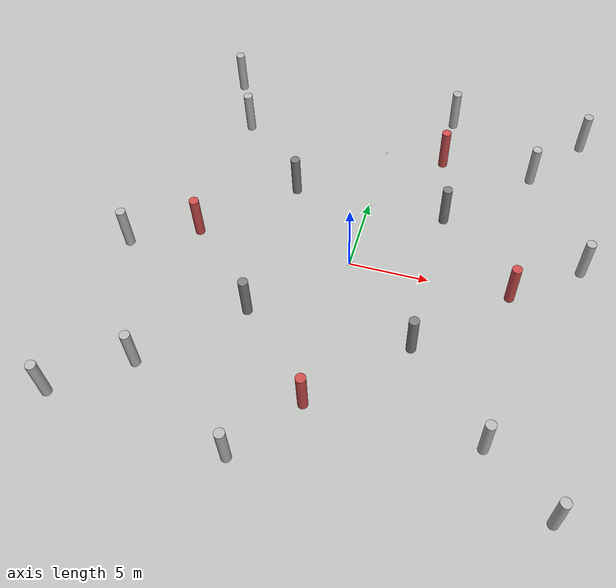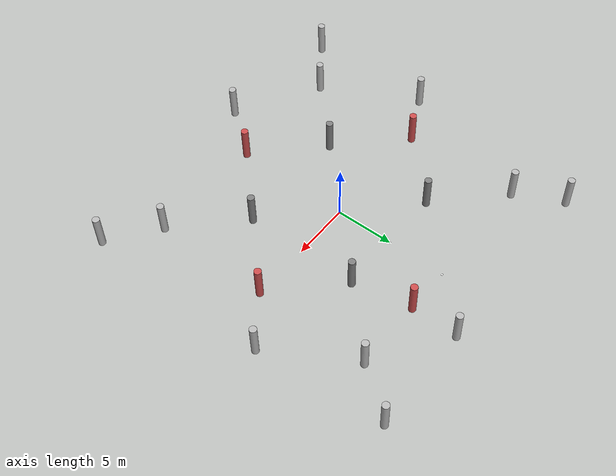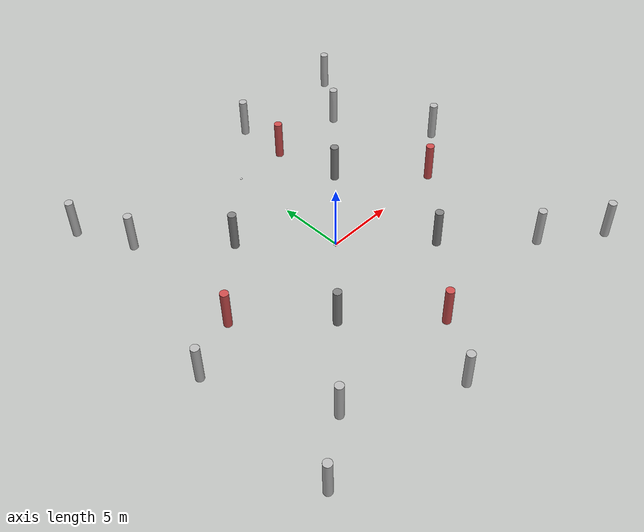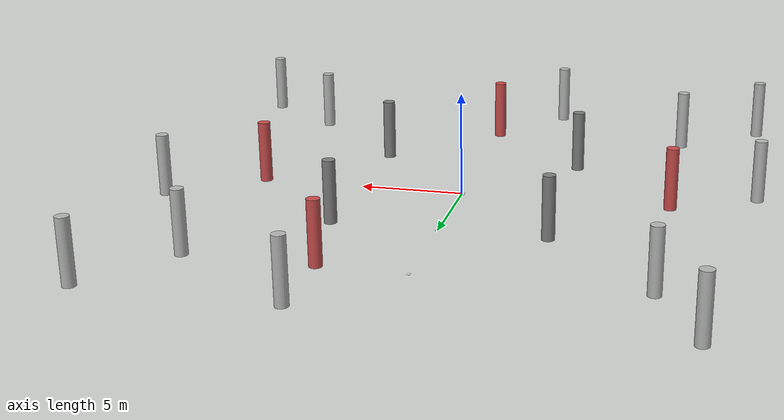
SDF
<sdf version="1.9">
 <world name="iris_runway">
  <physics name="1ms" type="ignore">
   <max_step_size>0.001</max_step_size>
   <real_time_factor>1.0</real_time_factor>
  </physics>
  <plugin filename="gz-sim-physics-system" name="gz::sim::systems::Physics"/>
  <plugin filename="gz-sim-sensors-system" name="gz::sim::systems::Sensors">
   <render_engine>ogre2</render_engine>
  </plugin>
  <plugin filename="gz-sim-user-commands-system" name="gz::sim::systems::UserCommands"/>
  <plugin filename="gz-sim-scene-broadcaster-system" name="gz::sim::systems::SceneBroadcaster"/>
  <plugin filename="gz-sim-imu-system" name="gz::sim::systems::Imu"/>
  <scene><ambient>1.0 1.0 1.0</ambient><background>0.8 0.8 0.8</background></scene>
  <spherical_coordinates>
   <latitude_deg>-35.363262</latitude_deg>
   <longitude_deg>149.165237</longitude_deg>
   <elevation>584</elevation>
   <heading_deg>0</heading_deg>
   <surface_model>EARTH_WGS84</surface_model>
  </spherical_coordinates>
  <light type="directional" name="sun">
   <pose>0 0 10 0 0 0</pose>
   <diffuse>0.8 0.8 0.8 1</diffuse>
   <specular>0.8 0.8 0.8 1</specular>
   <attenuation>
    <range>1000</range>
    <constant>0.9</constant>
    <linear>0.01</linear>
    <quadratic>0.001</quadratic>
   </attenuation>
   <direction>-0.5 0.1 -0.9</direction>
  </light>
  <model name="aruco_5x5_0">
   <pose degrees="true">0 0 0.01 0 0 0</pose>
   <static>true</static>
   <link name="link">
    <visual name="visual">
     <geometry><box><size>0.30 0.30 0.01</size></box></geometry>
     <material>
      <ambient>1 1 1 1</ambient>
      <diffuse>1 1 1 1</diffuse>
      <pbr><metal><albedo_map>0.png</albedo_map><roughness>1.0</roughness><metalness>0.0</metalness></metal></pbr>
     </material>
    </visual>
   </link>
  </model>
  <model name="aruco_5x5_1">
   <pose degrees="true">0 5 0.01 0 0 0</pose>
   <static>true</static>
   <link name="link">
    <visual name="visual">
     <geometry><box><size>0.15 0.15 0.01</size></box></geometry>
     <material>
      <ambient>1 1 1 1</ambient>
      <diffuse>1 1 1 1</diffuse>
      <pbr><metal><albedo_map>1.png</albedo_map><roughness>1.0</roughness><metalness>0.0</metalness></metal></pbr>
     </material>
    </visual>
   </link>
  </model>
  <model name="aruco_5x5_2">
   <pose degrees="true">0 10 0.01 0 0 0</pose>
   <static>true</static>
   <link name="link">
    <visual name="visual">
     <geometry><box><size>0.15 0.15 0.01</size></box></geometry>
     <material>
      <ambient>1 1 1 1</ambient>
      <diffuse>1 1 1 1</diffuse>
      <pbr><metal><albedo_map>2.png</albedo_map><roughness>1.0</roughness><metalness>0.0</metalness></metal></pbr>
     </material>
    </visual>
   </link>
  </model>
  <model name="pillar_1">
   <pose>5  5 1.5 0 0 0</pose>
   <static>true</static>
   <link name="link">
    <collision name="collision">
     <geometry><cylinder><radius>0.3</radius><length>3.0</length></cylinder></geometry>
    </collision>
    <visual name="visual">
     <geometry><cylinder><radius>0.3</radius><length>3.0</length></cylinder></geometry>
     <material><ambient>0.3 0.3 0.3 1</ambient><diffuse>0.5 0.5 0.5 1</diffuse></material>
    </visual>
   </link>
  </model>
  <model name="pillar_2">
   <pose>5 -5 1.5 0 0 0</pose>
   <static>true</static>
   <link name="link">
    <collision name="collision">
     <geometry><cylinder><radius>0.3</radius><length>3.0</length></cylinder></geometry>
    </collision>
    <visual name="visual">
     <geometry><cylinder><radius>0.3</radius><length>3.0</length></cylinder></geometry>
     <material><ambient>0.3 0.3 0.3 1</ambient><diffuse>0.5 0.5 0.5 1</diffuse></material>
    </visual>
   </link>
  </model>
  <model name="pillar_3">
   <pose>-5  5 1.5 0 0 0</pose>
   <static>true</static>
   <link name="link">
    <collision name="collision">
     <geometry><cylinder><radius>0.3</radius><length>3.0</length></cylinder></geometry>
    </collision>
    <visual name="visual">
     <geometry><cylinder><radius>0.3</radius><length>3.0</length></cylinder></geometry>
     <material><ambient>0.3 0.3 0.3 1</ambient><diffuse>0.5 0.5 0.5 1</diffuse></material>
    </visual>
   </link>
  </model>
  <model name="pillar_4">
   <pose>-5 -5 1.5 0 0 0</pose>
   <static>true</static>
   <link name="link">
    <collision name="collision">
     <geometry><cylinder><radius>0.3</radius><length>3.0</length></cylinder></geometry>
    </collision>
    <visual name="visual">
     <geometry><cylinder><radius>0.3</radius><length>3.0</length></cylinder></geometry>
     <material><ambient>0.3 0.3 0.3 1</ambient><diffuse>0.5 0.5 0.5 1</diffuse></material>
    </visual>
   </link>
  </model>
  <model name="pillar_5">
   <pose>10  0 1.5 0 0 0</pose>
   <static>true</static>
   <link name="link">
    <collision name="collision">
     <geometry><cylinder><radius>0.3</radius><length>3.0</length></cylinder></geometry>
    </collision>
    <visual name="visual">
     <geometry><cylinder><radius>0.3</radius><length>3.0</length></cylinder></geometry>
     <material><ambient>0.5 0.2 0.2 1</ambient><diffuse>0.8 0.3 0.3 1</diffuse></material>
    </visual>
   </link>
  </model>
  <model name="pillar_6">
   <pose>-10  0 1.5 0 0 0</pose>
   <static>true</static>
   <link name="link">
    <collision name="collision">
     <geometry><cylinder><radius>0.3</radius><length>3.0</length></cylinder></geometry>
    </collision>
    <visual name="visual">
     <geometry><cylinder><radius>0.3</radius><length>3.0</length></cylinder></geometry>
     <material><ambient>0.5 0.2 0.2 1</ambient><diffuse>0.8 0.3 0.3 1</diffuse></material>
    </visual>
   </link>
  </model>
  <model name="pillar_7">
   <pose>4 10 1.5 0 0 0</pose>
   <static>true</static>
   <link name="link">
    <collision name="collision">
     <geometry><cylinder><radius>0.3</radius><length>3.0</length></cylinder></geometry>
    </collision>
    <visual name="visual">
     <geometry><cylinder><radius>0.3</radius><length>3.0</length></cylinder></geometry>
     <material><ambient>0.5 0.2 0.2 1</ambient><diffuse>0.8 0.3 0.3 1</diffuse></material>
    </visual>
   </link>
  </model>
  <model name="pillar_8">
   <pose>0 -10 1.5 0 0 0</pose>
   <static>true</static>
   <link name="link">
    <collision name="collision">
     <geometry><cylinder><radius>0.3</radius><length>3.0</length></cylinder></geometry>
    </collision>
    <visual name="visual">
     <geometry><cylinder><radius>0.3</radius><length>3.0</length></cylinder></geometry>
     <material><ambient>0.5 0.2 0.2 1</ambient><diffuse>0.8 0.3 0.3 1</diffuse></material>
    </visual>
   </link>
  </model>
  <model name="pillar_9">
   <pose>10  10 1.5 0 0 0</pose>
   <static>true</static>
   <link name="link">
    <collision name="collision">
     <geometry><cylinder><radius>0.3</radius><length>3.0</length></cylinder></geometry>
    </collision>
    <visual name="visual">
     <geometry><cylinder><radius>0.3</radius><length>3.0</length></cylinder></geometry>
    </visual>
   </link>
  </model>
  <model name="pillar_10">
   <pose>10 -10 1.5 0 0 0</pose>
   <static>true</static>
   <link name="link">
    <collision name="collision">
     <geometry><cylinder><radius>0.3</radius><length>3.0</length></cylinder></geometry>
    </collision>
    <visual name="visual">
     <geometry><cylinder><radius>0.3</radius><length>3.0</length></cylinder></geometry>
    </visual>
   </link>
  </model>
  <model name="pillar_11">
   <pose>-10  10 1.5 0 0 0</pose>
   <static>true</static>
   <link name="link">
    <collision name="collision">
     <geometry><cylinder><radius>0.3</radius><length>3.0</length></cylinder></geometry>
    </collision>
    <visual name="visual">
     <geometry><cylinder><radius>0.3</radius><length>3.0</length></cylinder></geometry>
    </visual>
   </link>
  </model>
  <model name="pillar_12">
   <pose>-10 -10 1.5 0 0 0</pose>
   <static>true</static>
   <link name="link">
    <collision name="collision">
     <geometry><cylinder><radius>0.3</radius><length>3.0</length></cylinder></geometry>
    </collision>
    <visual name="visual">
     <geometry><cylinder><radius>0.3</radius><length>3.0</length></cylinder></geometry>
    </visual>
   </link>
  </model>
  <model name="pillar_13">
   <pose>14   3 1.5 0 0 0</pose>
   <static>true</static>
   <link name="link">
    <collision name="collision">
     <geometry><cylinder><radius>0.3</radius><length>3.0</length></cylinder></geometry>
    </collision>
    <visual name="visual">
     <geometry><cylinder><radius>0.3</radius><length>3.0</length></cylinder></geometry>
    </visual>
   </link>
  </model>
  <model name="pillar_14">
   <pose>-14  -2 1.5 0 0 0</pose>
   <static>true</static>
   <link name="link">
    <collision name="collision">
     <geometry><cylinder><radius>0.3</radius><length>3.0</length></cylinder></geometry>
    </collision>
    <visual name="visual">
     <geometry><cylinder><radius>0.3</radius><length>3.0</length></cylinder></geometry>
    </visual>
   </link>
  </model>
  <model name="pillar_15">
   <pose>4  14 1.5 0 0 0</pose>
   <static>true</static>
   <link name="link">
    <collision name="collision">
     <geometry><cylinder><radius>0.3</radius><length>3.0</length></cylinder></geometry>
    </collision>
    <visual name="visual">
     <geometry><cylinder><radius>0.3</radius><length>3.0</length></cylinder></geometry>
    </visual>
   </link>
  </model>
  <model name="pillar_16">
   <pose>-3 -14 1.5 0 0 0</pose>
   <static>true</static>
   <link name="link">
    <collision name="collision">
     <geometry><cylinder><radius>0.3</radius><length>3.0</length></cylinder></geometry>
    </collision>
    <visual name="visual">
     <geometry><cylinder><radius>0.3</radius><length>3.0</length></cylinder></geometry>
    </visual>
   </link>
  </model>
  <model name="pillar_17">
   <pose>13  14 1.5 0 0 0</pose>
   <static>true</static>
   <link name="link">
    <collision name="collision">
     <geometry><cylinder><radius>0.3</radius><length>3.0</length></cylinder></geometry>
    </collision>
    <visual name="visual">
     <geometry><cylinder><radius>0.3</radius><length>3.0</length></cylinder></geometry>
    </visual>
   </link>
  </model>
  <model name="pillar_18">
   <pose>-14 -13 1.5 0 0 0</pose>
   <static>true</static>
   <link name="link">
    <collision name="collision">
     <geometry><cylinder><radius>0.3</radius><length>3.0</length></cylinder></geometry>
    </collision>
    <visual name="visual">
     <geometry><cylinder><radius>0.3</radius><length>3.0</length></cylinder></geometry>
    </visual>
   </link>
  </model>
  <model name="pillar_19">
   <pose>14 -13 1.5 0 0 0</pose>
   <static>true</static>
   <link name="link">
    <collision name="collision">
     <geometry><cylinder><radius>0.3</radius><length>3.0</length></cylinder></geometry>
    </collision>
    <visual name="visual">
     <geometry><cylinder><radius>0.3</radius><length>3.0</length></cylinder></geometry>
    </visual>
   </link>
  </model>
  <model name="pillar_20">
   <pose>-12  14 1.5 0 0 0</pose>
   <static>true</static>
   <link name="link">
    <collision name="collision">
     <geometry><cylinder><radius>0.3</radius><length>3.0</length></cylinder></geometry>
    </collision>
    <visual name="visual">
     <geometry><cylinder><radius>0.3</radius><length>3.0</length></cylinder></geometry>
    </visual>
   </link>
  </model>
 </world>
</sdf>
